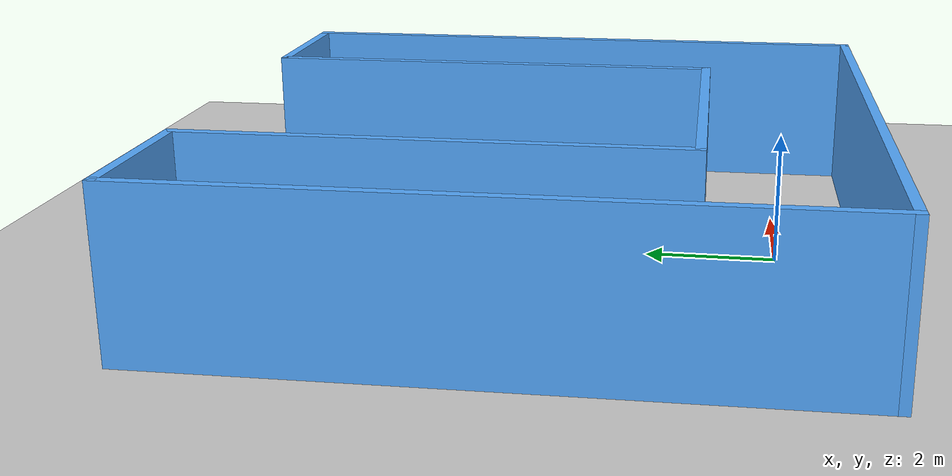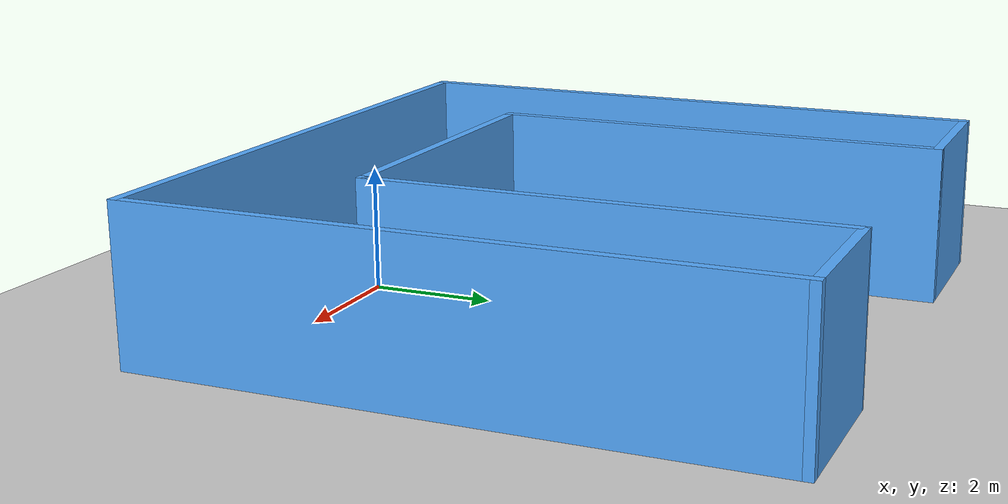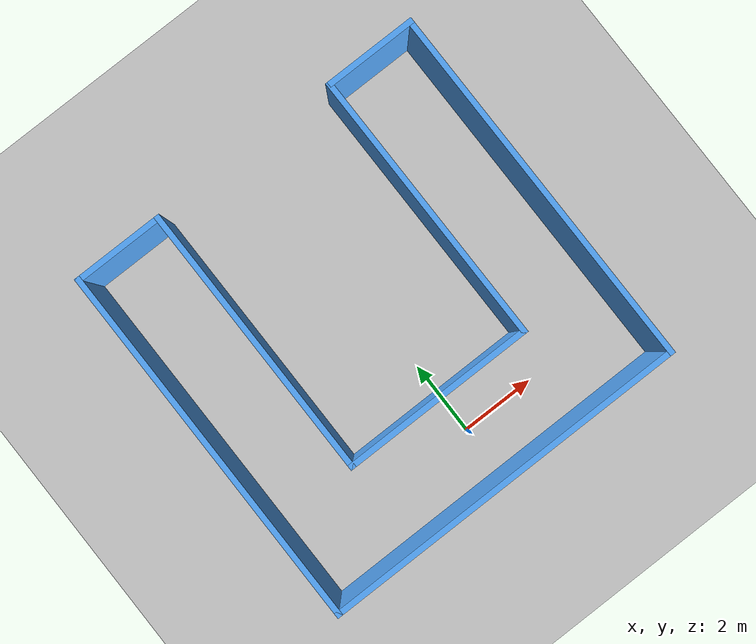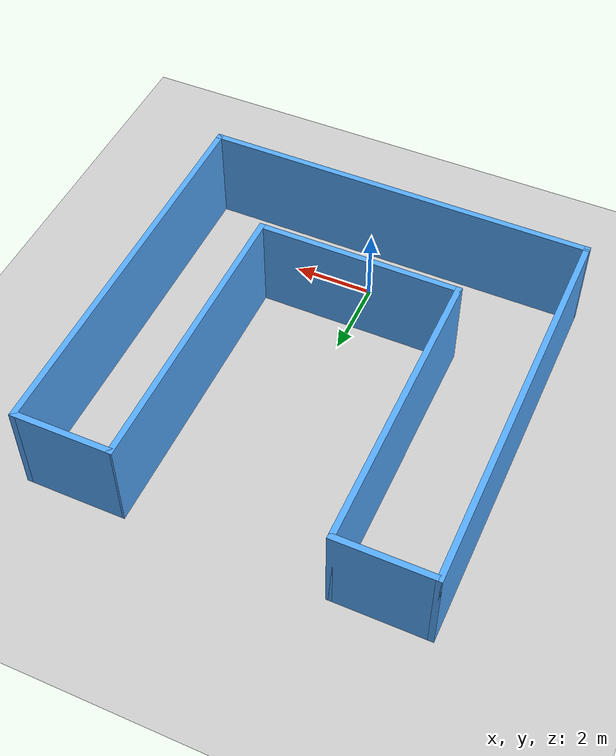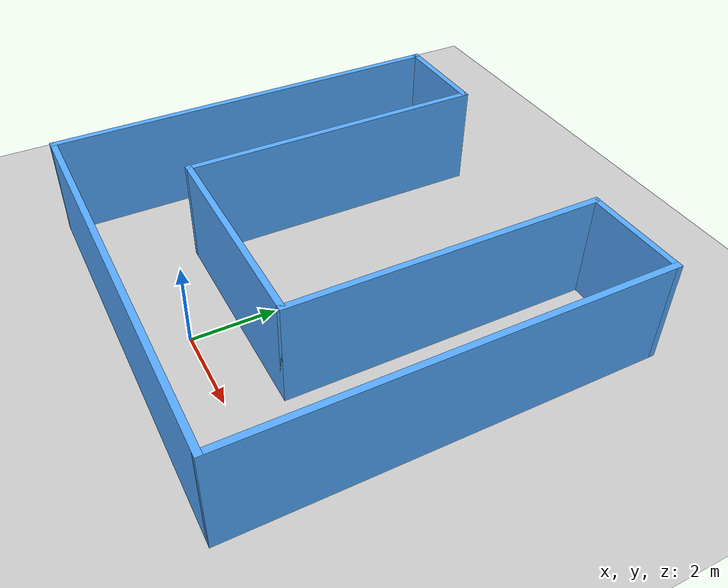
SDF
<sdf version="1.6">
 <world name="default">
  <light name="sun" type="directional">
   <pose>0 0 15 0 -0 0</pose>
   <diffuse>1 1 1 1</diffuse>
   <specular>0.1 0.1 0.1 1</specular>
   <attenuation>
    <range>1000</range>
    <constant>0.9</constant>
    <linear>0.01</linear>
    <quadratic>0.001</quadratic>
   </attenuation>
   <direction>-0.5 0.5 -1</direction>
  </light>
  <model name="ground_plane">
   <static>1</static>
   <link name="link">
    <collision name="collision">
     <geometry><plane><normal>0 0 1</normal><size>100 100</size></plane></geometry>
     <surface><friction><ode><mu>100</mu><mu2>50</mu2></ode></friction></surface>
    </collision>
    <visual name="visual">
     <cast_shadows>0</cast_shadows>
     <geometry><plane><normal>0 0 1</normal><size>100 100</size></plane></geometry>
     <material>
      <script><uri>file://media/materials/scripts/gazebo.material</uri><name>Gazebo/Grey</name></script>
     </material>
    </visual>
   </link>
  </model>
  <gravity>0 0 -9.8</gravity>
  <magnetic_field>6e-06 2.3e-05 -4.2e-05</magnetic_field>
  <atmosphere type="adiabatic"/>
  <physics name="default_physics" default="0" type="ode">
   <max_step_size>0.001</max_step_size>
   <real_time_factor>1</real_time_factor>
   <real_time_update_rate>1000</real_time_update_rate>
  </physics>
  <scene><ambient>0.4 0.4 0.4 1</ambient><background>0.7 0.7 0.7 1</background><shadows>1</shadows></scene>
  <spherical_coordinates>
   <surface_model>EARTH_WGS84</surface_model>
   <latitude_deg>0</latitude_deg>
   <longitude_deg>0</longitude_deg>
   <elevation>0</elevation>
   <heading_deg>0</heading_deg>
  </spherical_coordinates>
  <model name="MyWorld">
   <pose>-0.104264 3.60786 0 0 -0 0</pose>
   <link name="Wall_0">
    <collision name="Wall_0_Collision">
     <geometry><box><size>10 0.15 2.5</size></box></geometry>
     <pose>0 0 1.25 0 -0 0</pose>
    </collision>
    <visual name="Wall_0_Visual">
     <pose>0 0 1.25 0 -0 0</pose>
     <geometry><box><size>10 0.15 2.5</size></box></geometry>
     <material>
      <script><uri>file://media/materials/scripts/gazebo.material</uri><name>Gazebo/Grey</name></script>
      <ambient>0.333333 0.666667 1 1</ambient>
     </material>
    </visual>
    <pose>0 -4.925 0 0 -0 0</pose>
   </link>
   <link name="Wall_1">
    <collision name="Wall_1_Collision">
     <geometry><box><size>10 0.15 2.5</size></box></geometry>
     <pose>0 0 1.25 0 -0 0</pose>
    </collision>
    <visual name="Wall_1_Visual">
     <pose>0 0 1.25 0 -0 0</pose>
     <geometry><box><size>10 0.15 2.5</size></box></geometry>
     <material>
      <script><uri>file://media/materials/scripts/gazebo.material</uri><name>Gazebo/Grey</name></script>
      <ambient>0.333333 0.666667 1 1</ambient>
     </material>
    </visual>
    <pose>4.925 0 0 0 -0 1.5708</pose>
   </link>
   <link name="Wall_10">
    <collision name="Wall_10_Collision">
     <geometry><box><size>7.5 0.15 2.5</size></box></geometry>
     <pose>0 0 1.25 0 -0 0</pose>
    </collision>
    <visual name="Wall_10_Visual">
     <pose>0 0 1.25 0 -0 0</pose>
     <geometry><box><size>7.5 0.15 2.5</size></box></geometry>
     <material>
      <script><uri>file://media/materials/scripts/gazebo.material</uri><name>Gazebo/Grey</name></script>
      <ambient>0.333333 0.666667 1 1</ambient>
     </material>
    </visual>
    <pose>2.525 1.25 0 0 -0 1.5708</pose>
   </link>
   <link name="Wall_4">
    <collision name="Wall_4_Collision">
     <geometry><box><size>2.5 0.15 2.5</size></box></geometry>
     <pose>0 0 1.25 0 -0 0</pose>
    </collision>
    <visual name="Wall_4_Visual">
     <pose>0 0 1.25 0 -0 0</pose>
     <geometry><box><size>2.5 0.15 2.5</size></box></geometry>
     <material>
      <script><uri>file://media/materials/scripts/gazebo.material</uri><name>Gazebo/Grey</name></script>
      <ambient>0.333333 0.666667 1 1</ambient>
     </material>
    </visual>
    <pose>3.75 4.925 0 0 -0 3.14159</pose>
   </link>
   <link name="Wall_6">
    <collision name="Wall_6_Collision">
     <geometry><box><size>10 0.15 2.5</size></box></geometry>
     <pose>0 0 1.25 0 -0 0</pose>
    </collision>
    <visual name="Wall_6_Visual">
     <pose>0 0 1.25 0 -0 0</pose>
     <geometry><box><size>10 0.15 2.5</size></box></geometry>
     <material>
      <script><uri>file://media/materials/scripts/gazebo.material</uri><name>Gazebo/Grey</name></script>
      <ambient>0.333333 0.666667 1 1</ambient>
     </material>
    </visual>
    <pose>-4.925 0 0 0 -0 1.5708</pose>
   </link>
   <link name="Wall_7">
    <collision name="Wall_7_Collision">
     <geometry><box><size>2.5 0.15 2.5</size></box></geometry>
     <pose>0 0 1.25 0 -0 0</pose>
    </collision>
    <visual name="Wall_7_Visual">
     <pose>0 0 1.25 0 -0 0</pose>
     <geometry><box><size>2.5 0.15 2.5</size></box></geometry>
     <material>
      <script><uri>file://media/materials/scripts/gazebo.material</uri><name>Gazebo/Grey</name></script>
      <ambient>0.333333 0.666667 1 1</ambient>
     </material>
    </visual>
    <pose>-3.75 4.925 0 0 -0 0</pose>
   </link>
   <link name="Wall_8">
    <collision name="Wall_8_Collision">
     <geometry><box><size>7.5 0.15 2.5</size></box></geometry>
     <pose>0 0 1.25 0 -0 0</pose>
    </collision>
    <visual name="Wall_8_Visual">
     <pose>0 0 1.25 0 -0 0</pose>
     <geometry><box><size>7.5 0.15 2.5</size></box></geometry>
     <material>
      <script><uri>file://media/materials/scripts/gazebo.material</uri><name>Gazebo/Grey</name></script>
      <ambient>0.333333 0.666667 1 1</ambient>
     </material>
    </visual>
    <pose>-2.575 1.25 0 0 0 -1.5708</pose>
   </link>
   <link name="Wall_9">
    <collision name="Wall_9_Collision">
     <geometry><box><size>5.25 0.15 2.5</size></box></geometry>
     <pose>0 0 1.25 0 -0 0</pose>
    </collision>
    <visual name="Wall_9_Visual">
     <pose>0 0 1.25 0 -0 0</pose>
     <geometry><box><size>5.25 0.15 2.5</size></box></geometry>
     <material>
      <script><uri>file://media/materials/scripts/gazebo.material</uri><name>Gazebo/Grey</name></script>
      <ambient>0.333333 0.666667 1 1</ambient>
     </material>
    </visual>
    <pose>-0.025 -2.425 0 0 -0 0</pose>
   </link>
   <static>1</static>
  </model>
 </world>
</sdf>
